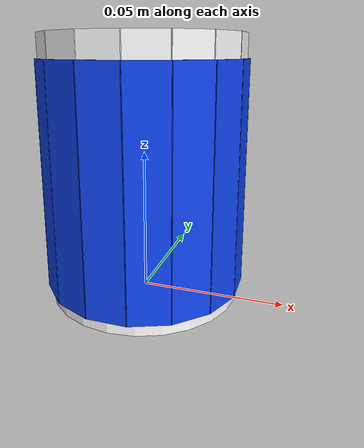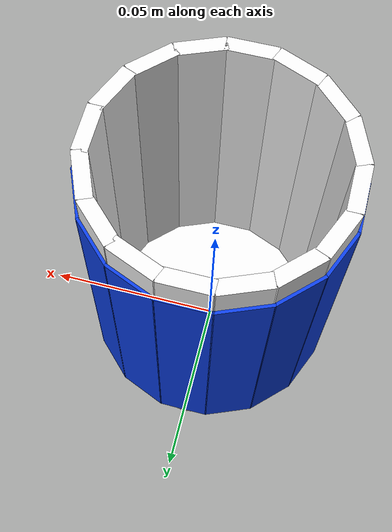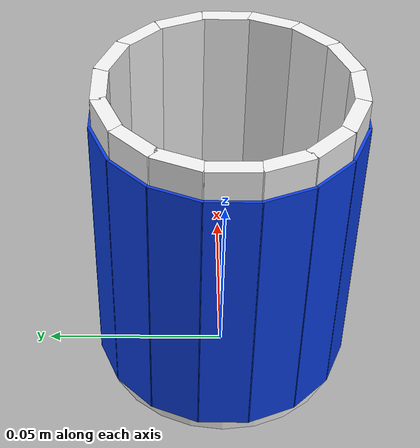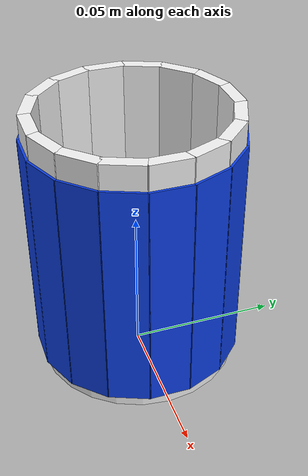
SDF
<?xml version='1.0'?>
<sdf version='1.10'>
  <model name='paper_cup'>
    <link name='link'>
      <inertial>
        <mass>0.030</mass>
        <inertia>
          <ixx>2.5e-05</ixx><ixy>0</ixy><ixz>0</ixz>
          <iyy>2.5e-05</iyy><iyz>0</iyz><izz>1.7e-05</izz>
        </inertia>
      </inertial>
      <collision name='floor_col'>
        <pose>0 0 0.00200 0 0 0</pose>
        <geometry><cylinder><radius>0.03350</radius><length>0.00400</length></cylinder></geometry>
      </collision>
      <visual name='floor_vis'>
        <pose>0 0 0.00200 0 0 0</pose>
        <geometry><cylinder><radius>0.03350</radius><length>0.00400</length></cylinder></geometry>
        <material>
          <ambient>0.95 0.95 0.95 1</ambient>
          <diffuse>0.95 0.95 0.95 1</diffuse>
        </material>
      </visual>
      <collision name='wall_col_0'>
        <pose>0.03150 0.00000 0.04700 0 0 0.00000</pose>
        <geometry><box><size>0.00400 0.01299 0.08600</size></box></geometry>
      </collision>
      <visual name='wall_vis_0'>
        <pose>0.03150 0.00000 0.04700 0 0 0.00000</pose>
        <geometry><box><size>0.00400 0.01299 0.08600</size></box></geometry>
        <material>
          <ambient>0.95 0.95 0.95 1</ambient>
          <diffuse>0.95 0.95 0.95 1</diffuse>
        </material>
      </visual>
      <collision name='wall_col_1'>
        <pose>0.02910 0.01205 0.04700 0 0 0.39270</pose>
        <geometry><box><size>0.00400 0.01299 0.08600</size></box></geometry>
      </collision>
      <visual name='wall_vis_1'>
        <pose>0.02910 0.01205 0.04700 0 0 0.39270</pose>
        <geometry><box><size>0.00400 0.01299 0.08600</size></box></geometry>
        <material>
          <ambient>0.95 0.95 0.95 1</ambient>
          <diffuse>0.95 0.95 0.95 1</diffuse>
        </material>
      </visual>
      <collision name='wall_col_2'>
        <pose>0.02227 0.02227 0.04700 0 0 0.78540</pose>
        <geometry><box><size>0.00400 0.01299 0.08600</size></box></geometry>
      </collision>
      <visual name='wall_vis_2'>
        <pose>0.02227 0.02227 0.04700 0 0 0.78540</pose>
        <geometry><box><size>0.00400 0.01299 0.08600</size></box></geometry>
        <material>
          <ambient>0.95 0.95 0.95 1</ambient>
          <diffuse>0.95 0.95 0.95 1</diffuse>
        </material>
      </visual>
      <collision name='wall_col_3'>
        <pose>0.01205 0.02910 0.04700 0 0 1.17810</pose>
        <geometry><box><size>0.00400 0.01299 0.08600</size></box></geometry>
      </collision>
      <visual name='wall_vis_3'>
        <pose>0.01205 0.02910 0.04700 0 0 1.17810</pose>
        <geometry><box><size>0.00400 0.01299 0.08600</size></box></geometry>
        <material>
          <ambient>0.95 0.95 0.95 1</ambient>
          <diffuse>0.95 0.95 0.95 1</diffuse>
        </material>
      </visual>
      <collision name='wall_col_4'>
        <pose>0.00000 0.03150 0.04700 0 0 1.57080</pose>
        <geometry><box><size>0.00400 0.01299 0.08600</size></box></geometry>
      </collision>
      <visual name='wall_vis_4'>
        <pose>0.00000 0.03150 0.04700 0 0 1.57080</pose>
        <geometry><box><size>0.00400 0.01299 0.08600</size></box></geometry>
        <material>
          <ambient>0.95 0.95 0.95 1</ambient>
          <diffuse>0.95 0.95 0.95 1</diffuse>
        </material>
      </visual>
      <collision name='wall_col_5'>
        <pose>-0.01205 0.02910 0.04700 0 0 1.96350</pose>
        <geometry><box><size>0.00400 0.01299 0.08600</size></box></geometry>
      </collision>
      <visual name='wall_vis_5'>
        <pose>-0.01205 0.02910 0.04700 0 0 1.96350</pose>
        <geometry><box><size>0.00400 0.01299 0.08600</size></box></geometry>
        <material>
          <ambient>0.95 0.95 0.95 1</ambient>
          <diffuse>0.95 0.95 0.95 1</diffuse>
        </material>
      </visual>
      <collision name='wall_col_6'>
        <pose>-0.02227 0.02227 0.04700 0 0 2.35619</pose>
        <geometry><box><size>0.00400 0.01299 0.08600</size></box></geometry>
      </collision>
      <visual name='wall_vis_6'>
        <pose>-0.02227 0.02227 0.04700 0 0 2.35619</pose>
        <geometry><box><size>0.00400 0.01299 0.08600</size></box></geometry>
        <material>
          <ambient>0.95 0.95 0.95 1</ambient>
          <diffuse>0.95 0.95 0.95 1</diffuse>
        </material>
      </visual>
      <collision name='wall_col_7'>
        <pose>-0.02910 0.01205 0.04700 0 0 2.74889</pose>
        <geometry><box><size>0.00400 0.01299 0.08600</size></box></geometry>
      </collision>
      <visual name='wall_vis_7'>
        <pose>-0.02910 0.01205 0.04700 0 0 2.74889</pose>
        <geometry><box><size>0.00400 0.01299 0.08600</size></box></geometry>
        <material>
          <ambient>0.95 0.95 0.95 1</ambient>
          <diffuse>0.95 0.95 0.95 1</diffuse>
        </material>
      </visual>
      <collision name='wall_col_8'>
        <pose>-0.03150 0.00000 0.04700 0 0 3.14159</pose>
        <geometry><box><size>0.00400 0.01299 0.08600</size></box></geometry>
      </collision>
      <visual name='wall_vis_8'>
        <pose>-0.03150 0.00000 0.04700 0 0 3.14159</pose>
        <geometry><box><size>0.00400 0.01299 0.08600</size></box></geometry>
        <material>
          <ambient>0.95 0.95 0.95 1</ambient>
          <diffuse>0.95 0.95 0.95 1</diffuse>
        </material>
      </visual>
      <collision name='wall_col_9'>
        <pose>-0.02910 -0.01205 0.04700 0 0 3.53429</pose>
        <geometry><box><size>0.00400 0.01299 0.08600</size></box></geometry>
      </collision>
      <visual name='wall_vis_9'>
        <pose>-0.02910 -0.01205 0.04700 0 0 3.53429</pose>
        <geometry><box><size>0.00400 0.01299 0.08600</size></box></geometry>
        <material>
          <ambient>0.95 0.95 0.95 1</ambient>
          <diffuse>0.95 0.95 0.95 1</diffuse>
        </material>
      </visual>
      <collision name='wall_col_10'>
        <pose>-0.02227 -0.02227 0.04700 0 0 3.92699</pose>
        <geometry><box><size>0.00400 0.01299 0.08600</size></box></geometry>
      </collision>
      <visual name='wall_vis_10'>
        <pose>-0.02227 -0.02227 0.04700 0 0 3.92699</pose>
        <geometry><box><size>0.00400 0.01299 0.08600</size></box></geometry>
        <material>
          <ambient>0.95 0.95 0.95 1</ambient>
          <diffuse>0.95 0.95 0.95 1</diffuse>
        </material>
      </visual>
      <collision name='wall_col_11'>
        <pose>-0.01205 -0.02910 0.04700 0 0 4.31969</pose>
        <geometry><box><size>0.00400 0.01299 0.08600</size></box></geometry>
      </collision>
      <visual name='wall_vis_11'>
        <pose>-0.01205 -0.02910 0.04700 0 0 4.31969</pose>
        <geometry><box><size>0.00400 0.01299 0.08600</size></box></geometry>
        <material>
          <ambient>0.95 0.95 0.95 1</ambient>
          <diffuse>0.95 0.95 0.95 1</diffuse>
        </material>
      </visual>
      <collision name='wall_col_12'>
        <pose>-0.00000 -0.03150 0.04700 0 0 4.71239</pose>
        <geometry><box><size>0.00400 0.01299 0.08600</size></box></geometry>
      </collision>
      <visual name='wall_vis_12'>
        <pose>-0.00000 -0.03150 0.04700 0 0 4.71239</pose>
        <geometry><box><size>0.00400 0.01299 0.08600</size></box></geometry>
        <material>
          <ambient>0.95 0.95 0.95 1</ambient>
          <diffuse>0.95 0.95 0.95 1</diffuse>
        </material>
      </visual>
      <collision name='wall_col_13'>
        <pose>0.01205 -0.02910 0.04700 0 0 5.10509</pose>
        <geometry><box><size>0.00400 0.01299 0.08600</size></box></geometry>
      </collision>
      <visual name='wall_vis_13'>
        <pose>0.01205 -0.02910 0.04700 0 0 5.10509</pose>
        <geometry><box><size>0.00400 0.01299 0.08600</size></box></geometry>
        <material>
          <ambient>0.95 0.95 0.95 1</ambient>
          <diffuse>0.95 0.95 0.95 1</diffuse>
        </material>
      </visual>
      <collision name='wall_col_14'>
        <pose>0.02227 -0.02227 0.04700 0 0 5.49779</pose>
        <geometry><box><size>0.00400 0.01299 0.08600</size></box></geometry>
      </collision>
      <visual name='wall_vis_14'>
        <pose>0.02227 -0.02227 0.04700 0 0 5.49779</pose>
        <geometry><box><size>0.00400 0.01299 0.08600</size></box></geometry>
        <material>
          <ambient>0.95 0.95 0.95 1</ambient>
          <diffuse>0.95 0.95 0.95 1</diffuse>
        </material>
      </visual>
      <collision name='wall_col_15'>
        <pose>0.02910 -0.01205 0.04700 0 0 5.89049</pose>
        <geometry><box><size>0.00400 0.01299 0.08600</size></box></geometry>
      </collision>
      <visual name='wall_vis_15'>
        <pose>0.02910 -0.01205 0.04700 0 0 5.89049</pose>
        <geometry><box><size>0.00400 0.01299 0.08600</size></box></geometry>
        <material>
          <ambient>0.95 0.95 0.95 1</ambient>
          <diffuse>0.95 0.95 0.95 1</diffuse>
        </material>
      </visual>
      <visual name='skin_vis_0'>
        <pose>0.03390 0.00000 0.04300 0 0 0.00000</pose>
        <geometry><box><size>0.00080 0.01398 0.07800</size></box></geometry>
        <material>
          <ambient>0.05 0.25 0.9 1</ambient>
          <diffuse>0.05 0.25 0.9 1</diffuse>
        </material>
      </visual>
      <visual name='skin_vis_1'>
        <pose>0.03132 0.01297 0.04300 0 0 0.39270</pose>
        <geometry><box><size>0.00080 0.01398 0.07800</size></box></geometry>
        <material>
          <ambient>0.05 0.25 0.9 1</ambient>
          <diffuse>0.05 0.25 0.9 1</diffuse>
        </material>
      </visual>
      <visual name='skin_vis_2'>
        <pose>0.02397 0.02397 0.04300 0 0 0.78540</pose>
        <geometry><box><size>0.00080 0.01398 0.07800</size></box></geometry>
        <material>
          <ambient>0.05 0.25 0.9 1</ambient>
          <diffuse>0.05 0.25 0.9 1</diffuse>
        </material>
      </visual>
      <visual name='skin_vis_3'>
        <pose>0.01297 0.03132 0.04300 0 0 1.17810</pose>
        <geometry><box><size>0.00080 0.01398 0.07800</size></box></geometry>
        <material>
          <ambient>0.05 0.25 0.9 1</ambient>
          <diffuse>0.05 0.25 0.9 1</diffuse>
        </material>
      </visual>
      <visual name='skin_vis_4'>
        <pose>0.00000 0.03390 0.04300 0 0 1.57080</pose>
        <geometry><box><size>0.00080 0.01398 0.07800</size></box></geometry>
        <material>
          <ambient>0.05 0.25 0.9 1</ambient>
          <diffuse>0.05 0.25 0.9 1</diffuse>
        </material>
      </visual>
      <visual name='skin_vis_5'>
        <pose>-0.01297 0.03132 0.04300 0 0 1.96350</pose>
        <geometry><box><size>0.00080 0.01398 0.07800</size></box></geometry>
        <material>
          <ambient>0.05 0.25 0.9 1</ambient>
          <diffuse>0.05 0.25 0.9 1</diffuse>
        </material>
      </visual>
      <visual name='skin_vis_6'>
        <pose>-0.02397 0.02397 0.04300 0 0 2.35619</pose>
        <geometry><box><size>0.00080 0.01398 0.07800</size></box></geometry>
        <material>
          <ambient>0.05 0.25 0.9 1</ambient>
          <diffuse>0.05 0.25 0.9 1</diffuse>
        </material>
      </visual>
      <visual name='skin_vis_7'>
        <pose>-0.03132 0.01297 0.04300 0 0 2.74889</pose>
        <geometry><box><size>0.00080 0.01398 0.07800</size></box></geometry>
        <material>
          <ambient>0.05 0.25 0.9 1</ambient>
          <diffuse>0.05 0.25 0.9 1</diffuse>
        </material>
      </visual>
      <visual name='skin_vis_8'>
        <pose>-0.03390 0.00000 0.04300 0 0 3.14159</pose>
        <geometry><box><size>0.00080 0.01398 0.07800</size></box></geometry>
        <material>
          <ambient>0.05 0.25 0.9 1</ambient>
          <diffuse>0.05 0.25 0.9 1</diffuse>
        </material>
      </visual>
      <visual name='skin_vis_9'>
        <pose>-0.03132 -0.01297 0.04300 0 0 3.53429</pose>
        <geometry><box><size>0.00080 0.01398 0.07800</size></box></geometry>
        <material>
          <ambient>0.05 0.25 0.9 1</ambient>
          <diffuse>0.05 0.25 0.9 1</diffuse>
        </material>
      </visual>
      <visual name='skin_vis_10'>
        <pose>-0.02397 -0.02397 0.04300 0 0 3.92699</pose>
        <geometry><box><size>0.00080 0.01398 0.07800</size></box></geometry>
        <material>
          <ambient>0.05 0.25 0.9 1</ambient>
          <diffuse>0.05 0.25 0.9 1</diffuse>
        </material>
      </visual>
      <visual name='skin_vis_11'>
        <pose>-0.01297 -0.03132 0.04300 0 0 4.31969</pose>
        <geometry><box><size>0.00080 0.01398 0.07800</size></box></geometry>
        <material>
          <ambient>0.05 0.25 0.9 1</ambient>
          <diffuse>0.05 0.25 0.9 1</diffuse>
        </material>
      </visual>
      <visual name='skin_vis_12'>
        <pose>-0.00000 -0.03390 0.04300 0 0 4.71239</pose>
        <geometry><box><size>0.00080 0.01398 0.07800</size></box></geometry>
        <material>
          <ambient>0.05 0.25 0.9 1</ambient>
          <diffuse>0.05 0.25 0.9 1</diffuse>
        </material>
      </visual>
      <visual name='skin_vis_13'>
        <pose>0.01297 -0.03132 0.04300 0 0 5.10509</pose>
        <geometry><box><size>0.00080 0.01398 0.07800</size></box></geometry>
        <material>
          <ambient>0.05 0.25 0.9 1</ambient>
          <diffuse>0.05 0.25 0.9 1</diffuse>
        </material>
      </visual>
      <visual name='skin_vis_14'>
        <pose>0.02397 -0.02397 0.04300 0 0 5.49779</pose>
        <geometry><box><size>0.00080 0.01398 0.07800</size></box></geometry>
        <material>
          <ambient>0.05 0.25 0.9 1</ambient>
          <diffuse>0.05 0.25 0.9 1</diffuse>
        </material>
      </visual>
      <visual name='skin_vis_15'>
        <pose>0.03132 -0.01297 0.04300 0 0 5.89049</pose>
        <geometry><box><size>0.00080 0.01398 0.07800</size></box></geometry>
        <material>
          <ambient>0.05 0.25 0.9 1</ambient>
          <diffuse>0.05 0.25 0.9 1</diffuse>
        </material>
      </visual>
    </link>
  </model>
</sdf>
